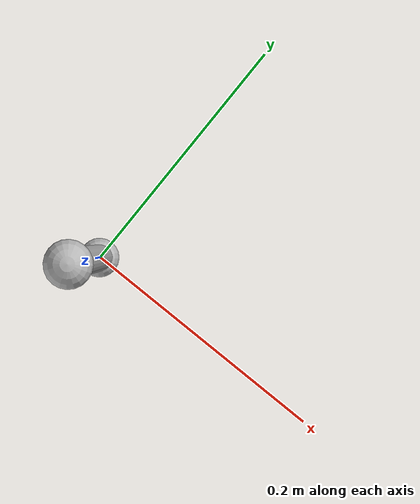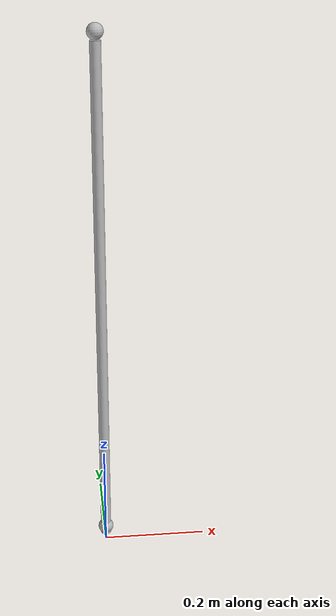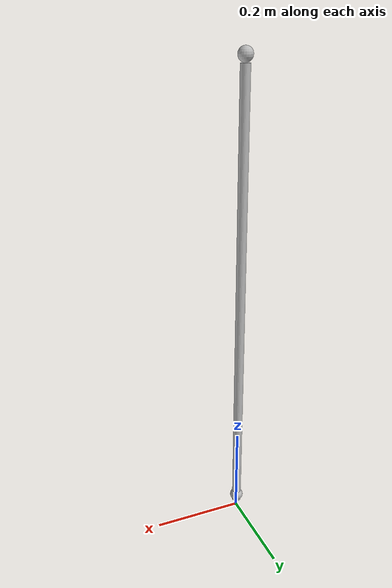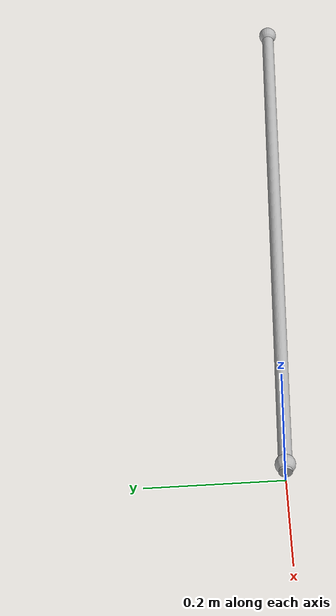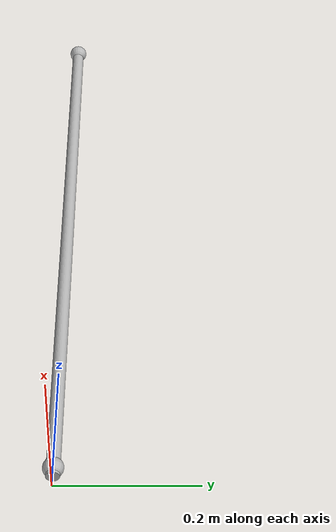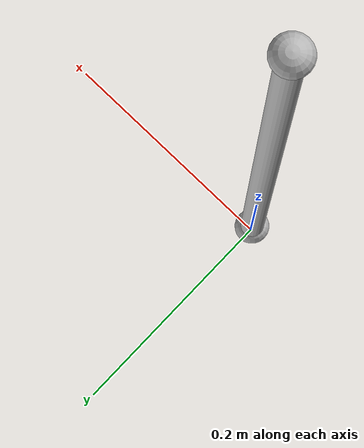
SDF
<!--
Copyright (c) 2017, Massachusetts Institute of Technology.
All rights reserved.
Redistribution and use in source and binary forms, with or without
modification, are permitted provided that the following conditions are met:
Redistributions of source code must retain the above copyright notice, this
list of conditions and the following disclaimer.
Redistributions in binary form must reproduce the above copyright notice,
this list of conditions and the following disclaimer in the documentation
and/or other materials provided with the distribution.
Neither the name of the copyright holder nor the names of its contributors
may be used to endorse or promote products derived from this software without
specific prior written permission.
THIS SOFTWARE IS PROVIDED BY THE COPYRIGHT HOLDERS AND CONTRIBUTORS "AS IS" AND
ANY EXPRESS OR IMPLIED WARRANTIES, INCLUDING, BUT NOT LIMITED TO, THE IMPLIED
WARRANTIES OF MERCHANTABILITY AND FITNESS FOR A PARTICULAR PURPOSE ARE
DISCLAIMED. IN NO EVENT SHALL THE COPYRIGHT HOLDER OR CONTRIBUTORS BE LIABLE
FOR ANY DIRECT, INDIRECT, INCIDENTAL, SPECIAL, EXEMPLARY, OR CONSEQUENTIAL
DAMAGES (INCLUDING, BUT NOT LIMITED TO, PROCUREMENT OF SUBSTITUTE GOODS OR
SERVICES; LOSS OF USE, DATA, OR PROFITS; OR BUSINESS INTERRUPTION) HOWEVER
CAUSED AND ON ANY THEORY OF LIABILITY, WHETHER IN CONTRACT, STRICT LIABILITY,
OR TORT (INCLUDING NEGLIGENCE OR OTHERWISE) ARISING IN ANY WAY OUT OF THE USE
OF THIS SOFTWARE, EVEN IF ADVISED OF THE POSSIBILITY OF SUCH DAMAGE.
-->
<?xml version="1.0"?>
<sdf version='1.6'>
  <model name='Pendulum'>

    <!-- Define base -->
    <link name='base'>
      <pose frame=''>0 0 1.015 0 -0 0</pose>
      <inertial>
        <pose frame=''>0 0 0.015 0 -0 0</pose>
        <mass>1</mass>
      </inertial>
      <visual name='base_visual'>
        <pose frame=''>0 0 0.015 0 -0 0</pose>
        <geometry>
          <sphere>
            <radius>0.015</radius>
          </sphere>
        </geometry>
      </visual>
    </link>
    <!-- Define arm -->
    <link name='arm'>
      <pose frame=''>0 0 1.015 0 -0 0</pose>
      <inertial>
        <pose frame=''>0 0 -0.5 0 -0 0</pose>
        <mass>1.105</mass>
      </inertial>
      <collision name='arm_collision'>
        <pose frame=''>0 0 -0.5 0 -0 0</pose>
        <geometry>
          <cylinder>
            <length>1</length>
            <radius>0.01</radius>
          </cylinder>
        </geometry>
      </collision>
      <visual name='arm_visual'>
        <pose frame=''>0 0 -0.5 0 -0 0</pose>
        <geometry>
          <cylinder>
            <length>1</length>
            <radius>0.01</radius>
          </cylinder>
        </geometry>
      </visual>
    </link>
    <joint name='theta' type='revolute'>
      <child>arm</child>
      <parent>base</parent>
      <axis>
        <xyz>0 1 0</xyz>
        <limit>
          <lower>-1e+16</lower>
          <upper>1e+16</upper>
        </limit>
        <dynamics>
          <damping>0.1</damping>
          <friction>0</friction>
          <spring_reference>0</spring_reference>
          <spring_stiffness>0</spring_stiffness>
        </dynamics>
        <use_parent_model_frame>1</use_parent_model_frame>
      </axis>
    </joint>

    <!-- Define payload -->
    <link name='payload'>
      <pose frame=''>0 0 1.015 0 -0 0</pose>
      <inertial>
        <pose frame=''>0 0 -0.985 0 -0 0</pose>
        <mass>{PAYLOAD_MASS}</mass>
      </inertial>
      <visual name='payload_visual'>
        <pose frame=''>0 0 -0.985 0 -0 0</pose>
        <geometry>
          <sphere>
            <radius>0.015</radius>
          </sphere>
        </geometry>
      </visual>
    </link>
    <joint name='payload_weld' type='fixed'>
      <child>payload</child>
      <parent>arm</parent>
    </joint>
  </model>
</sdf>
